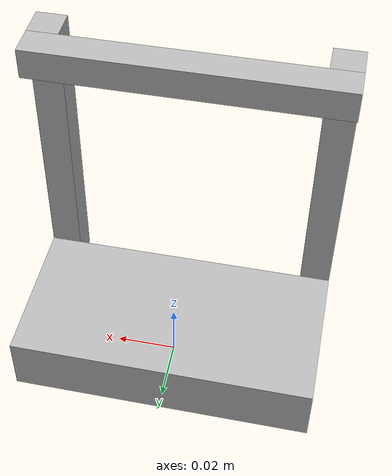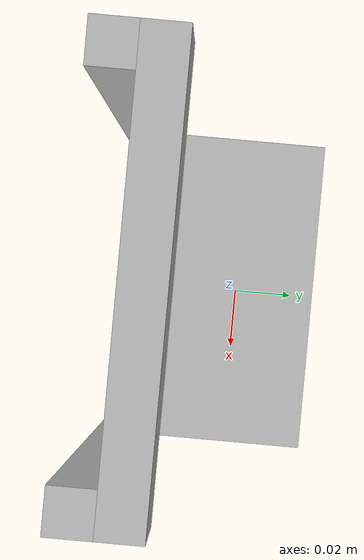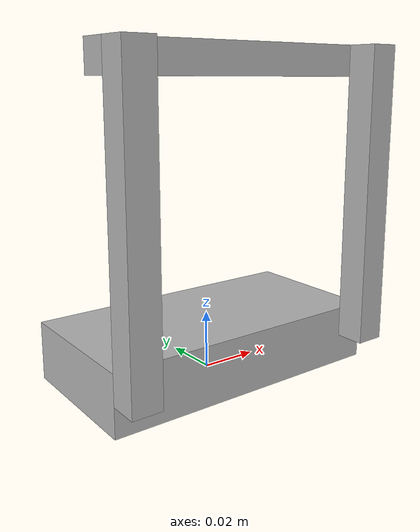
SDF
<?xml version='1.0'?>
<sdf version='1.6'>
  <model name="sample1">
    <plugin name="gazebo_ros_control" filename="libgazebo_ros_control.so">
      <robotNamespace>/sample1</robotNamespace>
    </plugin>
    <static>false</static>

    <link name='base_link'>
      <pose>0 0 0.01 0 0 0</pose>
      <collision name='collision'>
	<geometry>
	  <box>
	    <size>0.1 0.05 0.02</size>
	  </box>
	</geometry>
      </collision>
      <visual name='visual'>
	<geometry>
	  <box>
	    <size>0.1 0.05 0.02</size>
	  </box>
	</geometry>
      </visual>
      <self_collide>1</self_collide>
      <inertial>
	<mass>0.1</mass>
	<inertia>
	  <ixx>0.000025</ixx>
	  <iyy>0.00009</iyy>
	  <izz>0.000105</izz>
	</inertia>
      </inertial>
    </link>

    <link name="left">
      <pose>-0.045 -0.03 0.06 0 0 0</pose>
      <collision name="collision">
	<geometry>
	  <box>
	    <size>0.01 0.01 0.1</size>
	  </box>
	</geometry>
      </collision>
      <visual name="visual">
	<geometry>
	  <box>
	    <size>0.01 0.01 0.1</size>
	  </box>
	</geometry>
      </visual>
      <self_collide>1</self_collide>
      <inertial>
	<mass>0.01</mass>
	<inertia>
	  <ixx>0.0000085</ixx>
	  <iyy>0.0000085</iyy>
	  <izz>0.0000002</izz>
	</inertia>
      </inertial>
    </link>

    <link name="right">
      <pose>0.045 -0.03 0.06 0 0 0</pose>
      <collision name="collision">
	<geometry>
	  <box>
	    <size>0.01 0.01 0.1</size>
	  </box>
	</geometry>
      </collision>
      <visual name="visual">
	<geometry>
	  <box>
	    <size>0.01 0.01 0.1</size>
	  </box>
	</geometry>
      </visual>
      <self_collide>1</self_collide>
      <inertial>
	<mass>0.01</mass>
	<inertia>
	  <ixx>0.0000085</ixx>
	  <iyy>0.0000085</iyy>
	  <izz>0.0000002</izz>
	</inertia>
      </inertial>
    </link>

    <link name="top">
      <pose>0 -0.02 0.105 0 0 0</pose>
      <collision name="collision">
	<geometry>
	  <box>
	    <size>0.1 0.01 0.01</size>
	  </box>
	</geometry>
      </collision>
      <visual name="visual">
	<geometry>
	  <box>
	    <size>0.1 0.01 0.01</size>
	  </box>
	</geometry>
      </visual>
      <self_collide>1</self_collide>
      <inertial>
	<mass>0.01</mass>
	<inertia>
	  <ixx>0.0000002</ixx>
	  <iyy>0.0000085</iyy>
	  <izz>0.0000085</izz>
	</inertia>
      </inertial>
    </link>

    <joint type="revolute" name="ld_hinge">
      <pose>0 0 -0.045 0 0 0</pose>
      <child>left</child>
      <parent>base_link</parent>
      <axis>
	<xyz>0 1 0</xyz>
	<limit>
	  <lower>-1.5707</lower>
	  <upper>1.5707</upper>
	  <effort>0.4</effort>
	  <velocity>1.5707</velocity>
	</limit>
      </axis>
    </joint>

    <joint type="revolute" name="rd_hinge">
      <pose>0 0 -0.045 0 0 0</pose>
      <child>right</child>
      <parent>base_link</parent>
      <axis>
	<xyz>0 1 0</xyz>
	<limit>
	  <lower>-1.5707</lower>
	  <upper>1.5707</upper>
	  <effort>0</effort>
	  <velocity>1.5707</velocity>
	</limit>
      </axis>
    </joint>

    <joint type="revolute" name="lu_hinge">
      <pose>-0.045 0 0 0 0 0</pose>
      <child>top</child>
      <parent>left</parent>
      <axis>
	<xyz>0 1 0</xyz>
	<limit>
	  <lower>-1.5707</lower>
	  <upper>1.5707</upper>
	  <effort>0</effort>
	  <velocity>1.5707</velocity>
	</limit>
      </axis>
    </joint>

    <joint type="revolute" name="ru_hinge">
      <pose>0.045 0 0 0 0 0</pose>
      <child>top</child>
      <parent>right</parent>
      <axis>
	<xyz>0 1 0</xyz>
	<limit>
  	  <lower>-1.5707</lower>
  	  <upper>1.5707</upper>
  	  <effort>0</effort>
  	  <velocity>1.5707</velocity>
	</limit>
      </axis>
    </joint>

  </model>
</sdf>
